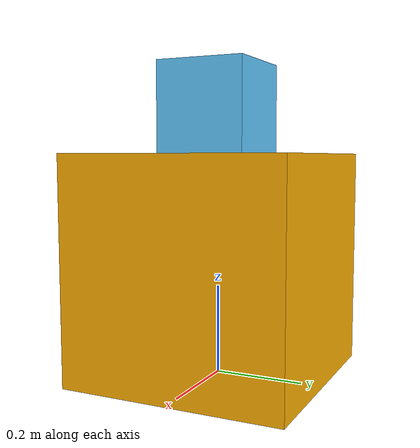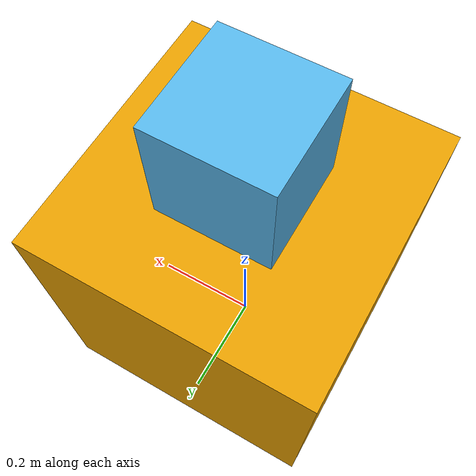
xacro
<?xml version="1.0"?>

<robot name="cubebot" xmlns:xacro="http://www.ros.org/wiki/xacro">

<xacro:property name="La" value="0.5" />
<xacro:property name="Lb" value="0.2" />

<link name="A">
	<origin xyz="0 0 ${La/2}" rpy="0 0 0" />

	<inertial>
		<mass value="0.1"/>
  		<origin xyz="0 0 ${La/2}" rpy="0 0 0" />
  		<inertia
			ixx="0.0000416666667" iyy="0.0000416666667" izz="0.0000416666667"
			iyz="0" ixy="0" ixz="0" />
	</inertial>

	<collision>
		<origin xyz="0 0 ${La/2}" rpy="0 0 0"/>
		<geometry>
			<box size="${La} ${La} ${La}" />
		</geometry>
  	</collision>

	<visual name="cubeA">
		<origin xyz="0 0 ${La/2}" rpy="0 0 0"/>
		<geometry>
			<box size="${La} ${La} ${La}" />
		</geometry>
	</visual>
</link>

<joint name="joint_A_B" type="fixed">
	<parent link="A" />
	<child link="B" />

	<origin xyz="0 0 ${La + Lb/2}" rpy="0 0 0" />
</joint>

<link name="B">
	<origin xyz="0 0 0" rpy="0 0 0" />

	<inertial>
		<mass value="0.1"/>
  		<origin xyz="0 0 0" rpy="0 0 0" />
  		<inertia
			ixx="0.0000416666667" iyy="0.0000416666667" izz="0.0000416666667"
			iyz="0" ixy="0" ixz="0" />
	</inertial>

	<collision>
		<origin xyz="0 0 0" rpy="0 0 0"/>
		<geometry>
			<box size="${Lb} ${Lb} ${Lb}" />
		</geometry>
  	</collision>

	<visual name="cubeB">
		<origin xyz="0 0 0" rpy="0 0 0"/>
		<geometry>
			<box size="${Lb} ${Lb} ${Lb}" />
		</geometry>
	</visual>
</link>

</robot>
